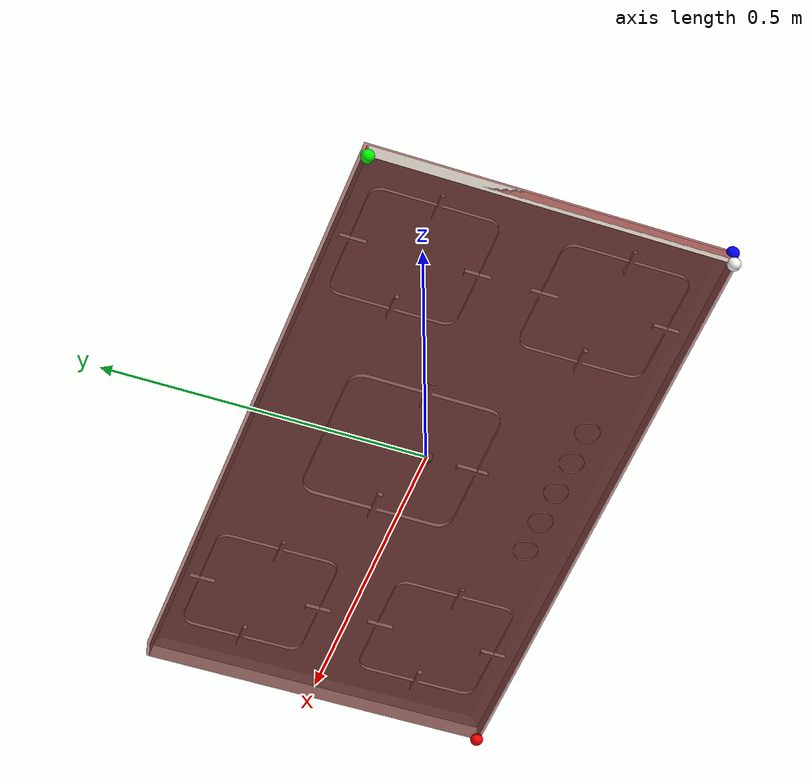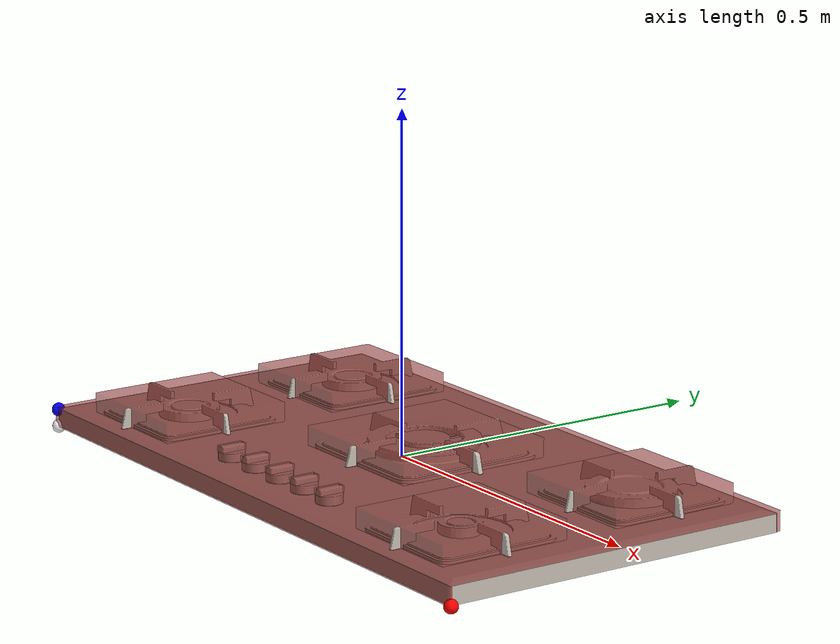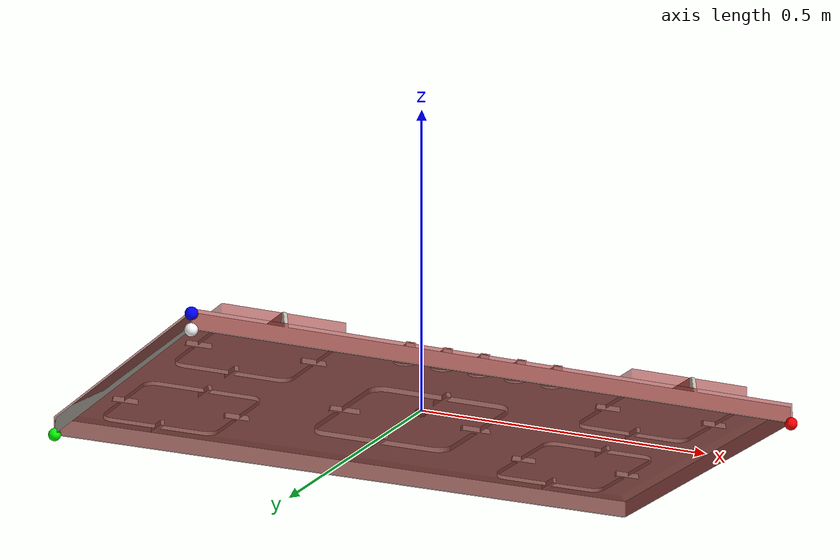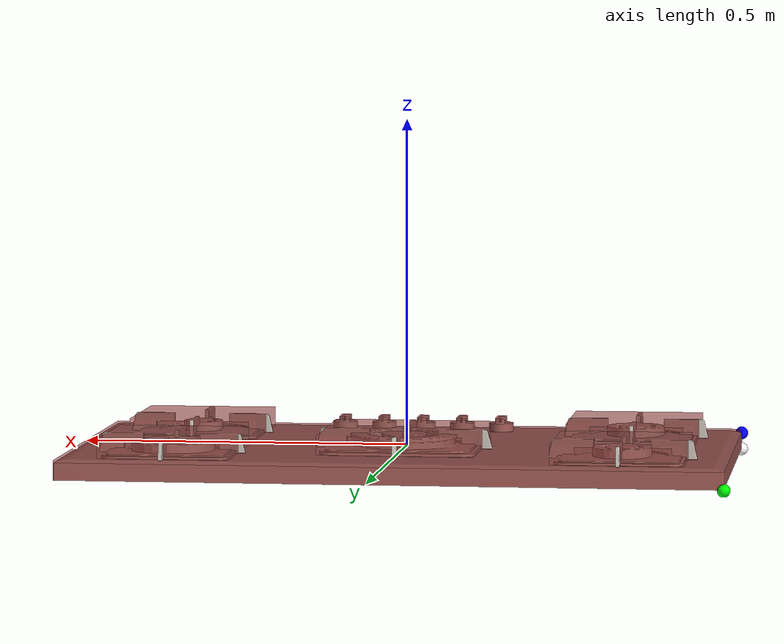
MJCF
<mujoco model="model">
  <compiler angle="radian" meshdir="visuals/" texturedir="visuals/"/>
  <asset>
    <texture type="2d" name="image0" file="image0.png"/>
    <material name="checker" texture="image0" specular="0.5" shininess="0.25"/>
    <mesh file="visuals/model_0.obj" name="model_0_vis" scale="1 1 1"/>
    <mesh file="visuals/knob_rear_right_0.obj" name="knob_rear_right_0_vis" scale="1 1 1"/>
    <mesh file="visuals/knob_front_left_0.obj" name="knob_front_left_0_vis" scale="1 1 1"/>
    <mesh file="visuals/knob_front_right_0.obj" name="knob_front_right_0_vis" scale="1 1 1"/>
    <mesh file="visuals/knob_rear_left_0.obj" name="knob_rear_left_0_vis" scale="1 1 1"/>
    <mesh file="visuals/knob_center_0.obj" name="knob_center_0_vis" scale="1 1 1"/>
  </asset>
  <default>
    <default class="visual">
      <geom conaffinity="0" contype="0" group="1" type="mesh"/>
    </default>
    <default class="collision">
      <geom group="0" rgba="0.5 0 0 0.5"/>
    </default>
  </default>
  <worldbody>
    <body>
      <!-- exterior bounding box points -->
      <site rgba="1 1 1 1" size="0.01" pos="-0.5 -0.27 -0.03" name="ext_p0"/>
      <site rgba="1 0 0 1" size="0.01" pos="0.5 -0.27 -0.03" name="ext_px"/>
      <site rgba="0 1 0 1" size="0.01" pos="-0.5 0.27 -0.03" name="ext_py"/>
      <site rgba="0 0 1 1" size="0.01" pos="-0.5 -0.27 -0.005" name="ext_pz"/>
      <!-- interior bounding box points -->
      <site rgba="0.5 0.5 0.5 1" size="0.01" pos="0 0 0" name="int_p0"/>
      <site rgba="1 1 0 1" size="0.01" pos="0 0 0" name="int_px"/>
      <site rgba="0 1 1 1" size="0.01" pos="0 0 0" name="int_py"/>
      <site rgba="1 0 1 1" size="0.01" pos="0 0 0" name="int_pz"/>
      <body name="object">
        <geom solimp="0.998 0.998 0.001" solref="0.001 1" density="100" friction="0.95 0.3 0.1" type="mesh" mesh="model_0_vis" material="checker" class="visual"/>
        <geom class="collision" type="box" pos="0 0 -0.014" size="0.5 0.275 0.015"/>
        <geom class="collision" type="box" pos="-0.34 -0.141 0.014" size="0.1 0.1 0.016"/>
        <geom class="collision" type="box" pos="-0.34 0.142 0.014" size="0.1 0.1 0.016"/>
        <geom class="collision" type="box" pos="0.34 -0.141 0.014" size="0.1 0.1 0.016"/>
        <geom class="collision" type="box" pos="0.34 0.142 0.014" size="0.1 0.1 0.016"/>
        <geom class="collision" type="box" pos="0 0.04 0.014" size="0.12 0.12 0.016"/>
        <!-- Burners -->
        <site name="burner_on_front_left" pos="-0.34 -0.142 0.014" size="0.06 0.004" rgba="0.3 0.4 1 0.5" type="cylinder"/>
        <site name="burner_on_front_right" pos="0.34 -0.141 0.014" size="0.04 0.004" rgba="0.3 0.4 1 0.5" type="cylinder"/>
        <site name="burner_on_rear_left" pos="-0.34 0.142 0.014" size="0.06 0.004" rgba="0.3 0.4 1 0.5" type="cylinder"/>
        <site name="burner_on_rear_right" pos="0.34 0.142 0.014" size="0.07 0.004" rgba="0.3 0.4 1 0.5" type="cylinder"/>
        <site name="burner_on_center" pos="0 0.04 0.014" size="0.09 0.004" rgba="0.3 0.4 1 0.5" type="cylinder"/>
        <body name="knob_rear_right">
          <joint name="knob_rear_right_joint" type="hinge" axis="0 0 1" pos="0.06076 -0.205 0.0072" damping="1" armature="2"/>
          <geom solimp="0.998 0.998 0.001" solref="0.001 1" density="100" friction="0.95 0.3 0.1" type="mesh" mesh="knob_rear_right_0_vis" material="checker" class="visual"/>
          <geom class="collision" type="cylinder" pos="0.06076 -0.205 0.0075" size="0.0195 0.0062"/>
          <geom class="collision" type="box" pos="0.06076 -0.205 0.018" size="0.0074 0.0195 0.0046"/>
        </body>
        <body name="knob_front_left">
          <joint name="knob_front_left_joint" type="hinge" axis="0 0 1" pos="-0.1247 -0.205 0.0072" damping="1" armature="2"/>
          <geom solimp="0.998 0.998 0.001" solref="0.001 1" density="100" friction="0.95 0.3 0.1" type="mesh" mesh="knob_front_left_0_vis" material="checker" class="visual"/>
          <geom class="collision" type="cylinder" pos="-0.1247 -0.205 0.0075" size="0.0195 0.0062"/>
          <geom class="collision" type="box" pos="-0.1247 -0.205 0.018" size="0.0074 0.0195 0.0046"/>
        </body>
        <body name="knob_front_right">
          <joint name="knob_front_right_joint" type="hinge" axis="0 0 1" pos="0.1226 -0.205 0.0072" damping="1" armature="2"/>
          <geom solimp="0.998 0.998 0.001" solref="0.001 1" density="100" friction="0.95 0.3 0.1" type="mesh" mesh="knob_front_right_0_vis" material="checker" class="visual"/>
          <geom class="collision" type="cylinder" pos="0.1226 -0.205 0.0075" size="0.0195 0.0062"/>
          <geom class="collision" type="box" pos="0.1226 -0.205 0.018" size="0.0074 0.0195 0.0046"/>
        </body>
        <body name="knob_rear_left">
          <joint name="knob_rear_left_joint" type="hinge" axis="0 0 1" pos="-0.06285 -0.205 0.0072" damping="1" armature="2"/>
          <geom solimp="0.998 0.998 0.001" solref="0.001 1" density="100" friction="0.95 0.3 0.1" type="mesh" mesh="knob_rear_left_0_vis" material="checker" class="visual"/>
          <geom class="collision" type="cylinder" pos="-0.06285 -0.205 0.0075" size="0.0195 0.0062"/>
          <geom class="collision" type="box" pos="-0.06285 -0.205 0.018" size="0.0074 0.0195 0.0046"/>
        </body>
        <body name="knob_center">
          <joint name="knob_center" type="hinge" axis="0 0 1" pos="-0.001 -0.205 0.0072" damping="1" armature="2"/>
          <geom solimp="0.998 0.998 0.001" solref="0.001 1" density="100" friction="0.95 0.3 0.1" type="mesh" mesh="knob_center_0_vis" material="checker" class="visual"/>
          <geom class="collision" type="cylinder" pos="-0.001 -0.205 0.0075" size="0.0195 0.0062"/>
          <geom class="collision" type="box" pos="-0.001 -0.205 0.018" size="0.0074 0.0195 0.0046"/>
        </body>
      </body>
    </body>
  </worldbody>
</mujoco>
